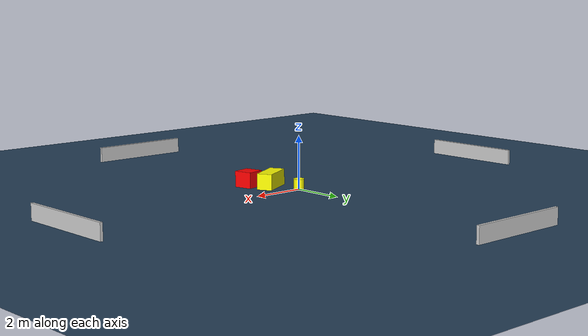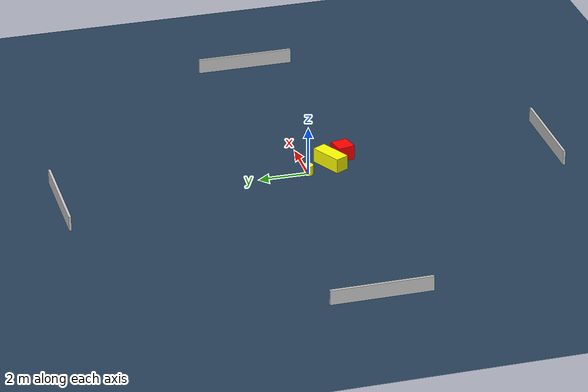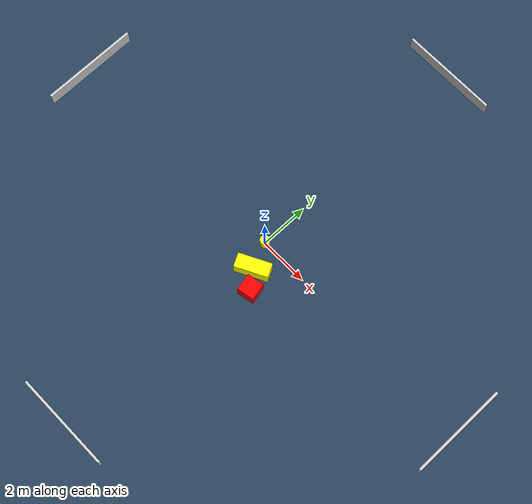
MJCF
<?xml version="1.0" ?>
<mujoco model="generated_environment">
  <option timestep="0.01" integrator="RK4" cone="elliptic"/>
  <default>
    <geom density="1"/>
  </default>
  <asset>
    <texture builtin="gradient" height="3072" name="skybox" rgb1="0.3 0.5 0.7" rgb2="0 0 0" type="skybox" width="512"/>
    <texture builtin="checker" height="300" name="groundplane" rgb1="0.2 0.3 0.4" rgb2="0.1 0.2 0.3" type="2d" width="300"/>
    <material name="groundplane" reflectance="0.2" texrepeat="5 5" texture="groundplane"/>
  </asset>
  <worldbody>
    <light dir="0 0 -1" directional="true" pos="0 0 1.5"/>
    <geom condim="3" friction="0.5 0.005 0.001" material="groundplane" name="floor" pos="0 0 0" size="0 0 0.05" type="plane"/>
    <body name="walls">
      <geom name="wall_1" condim="4" pos="-10.0 0.0 0.3" rgba="0.800000011920929 0.800000011920929 0.800000011920929 1.0" size="0.05 2.0 0.3" type="box"/>
      <geom name="wall_2" condim="4" pos="10.0 0.0 0.3" rgba="0.800000011920929 0.800000011920929 0.800000011920929 1.0" size="0.05 2.0 0.3" type="box"/>
      <geom name="wall_3" condim="4" pos="0.0 -10.0 0.3" rgba="0.800000011920929 0.800000011920929 0.800000011920929 1.0" size="2.0 0.05 0.3" type="box"/>
      <geom name="wall_4" condim="4" pos="0.0 10.0 0.3" rgba="0.800000011920929 0.800000011920929 0.800000011920929 1.0" size="2.0 0.05 0.3" type="box"/>
    </body>
    <body name="robot">
      <joint name="joint_x" type="slide" pos="0 0 0" axis="1 0 0"/>
      <joint name="joint_y" type="slide" pos="0 0 0" axis="0 1 0"/>
      <geom name="robot" type="cylinder" pos="0.0 0.0 0.2" size="0.2 0.2 0.0" mass="5.0" friction="1.0 0.005 0.0001" condim="4" rgba="1.0 1.0 0.0 1.0"/>
    </body>
    <body name="obstacle_1_movable">
      <geom name="obstacle_1_movable" condim="4" pos="0.4537241464599978 -1.045603755564477 0.3" euler="0 0 27.551092906517276" friction="0.0 0.005 0.001" rgba="1.0 1.0 0.0 1.0" size="0.6791559097037995 0.2860623030963629 0.3" type="box" mass="0.1"/>
      <joint type="free"/>
    </body>
    <body name="obstacle_2_static">
      <geom name="obstacle_2_static" condim="4" pos="0.9946666417392855 -1.698374551209862 0.3" euler="0 0 191.60051975737522" friction="0.0 0.005 0.001" rgba="1.0 0.0 0.0 1.0" size="0.3514213286646573 0.34745773666269997 0.3" type="box"/>
    </body>
  </worldbody>
  <actuator>
    <motor name="actuator_x" joint="joint_x" gear="1" ctrlrange="-1 1"/>
    <motor name="actuator_y" joint="joint_y" gear="1" ctrlrange="-1 1"/>
  </actuator>
</mujoco>
